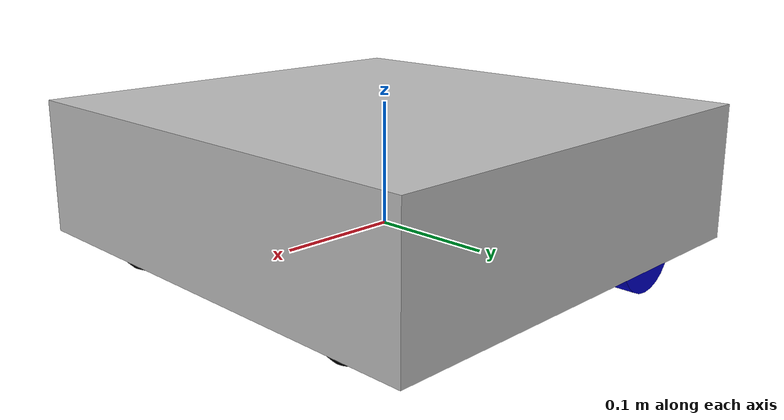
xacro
<?xml version="1.0"?>
<robot xmlns:xacro="http://www.ros.org/wiki/xacro"  name="robot">

    <xacro:include filename="inertial_macros.xacro"/>

    <!-- PARAMETERS -->

    <!-- CHASSIS PARAMETERS -->
    <xacro:property name="chassis_length" value="0.370"/>
    <xacro:property name="chassis_width" value="0.395"/>
    <xacro:property name="chassis_height" value="0.110"/>
    <xacro:property name="chassis_mass" value="1.0"/>

    <!-- OFFSET PARAMETERS -->
    <xacro:property name="wheel_offset_x" value="0.245"/>
    <xacro:property name="wheel_offset_y" value="0.170"/>
    <xacro:property name="wheel_offset_z" value="0.005"/>

    <!-- WHEELS PARAMETERS -->
    <xacro:property name="wheel_radius" value="0.033"/>
    <xacro:property name="wheel_thickness" value="0.026"/>
    <xacro:property name="wheel_mass" value="0.05"/>

    <!-- CASTER WHEEL PARAMETERS -->
    <xacro:property name="caster_wheel_radius" value="0.02"/>
    <xacro:property name="caster_wheel_mass" value="0.01"/>

    <!-- CASTER WHEEL OFFSET PARAMTERS -->
    <xacro:property name="caster_wheel_offset_x" value="0.19"/>
    <xacro:property name="caster_wheel_offset_y" value="0.12"/>
    <xacro:property name="caster_wheel_offset_z" value="${wheel_offset_z - wheel_radius + caster_wheel_radius}"/>

    <material name="silver">
        <color rgba="0.75 0.75 0.75 1"/>
    </material>

    <material name="blue">
        <color rgba="0 0 0.8 1"/>
    </material>

    <material name="black">
        <color rgba="0 0 0 1"/>
    </material>

    <material name="red">
        <color rgba="0.8 0 0 1"/>
    </material>

    <!-- BASE LINK -->
    <link name="base_link">
    </link>

    <!-- BASE FOOTPRINT JOINT -->
    <joint name="base_footprint_joint" type="fixed">
        <parent link="base_link"/>
        <child link="base_footprint"/>
        <origin xyz="0 0 0" rpy="0 0 0"/>
    </joint>

    <!-- BASE FOOTPRINT LINK -->
    <link name="base_footprint">
    </link>

    <!-- CHASSIS JOINT -->
    <joint name="chassis_joint" type="fixed">
        <parent link="base_link"/>
        <child link="chassis"/>
        <origin xyz="0 0 ${-wheel_offset_z}"/>
    </joint>

    <!-- CHASSIS LINK -->
    <link name="chassis">

        <!-- VISUAL -->
        <visual>
            <origin xyz="0 0 0.05"/>
            <geometry>
                <box size="${chassis_length} ${chassis_width} ${chassis_height}"/>
            </geometry>
            <material name="silver"/>
        </visual>

        <!-- COLLISION -->
        <collision>
            <origin xyz="0 0 ${chassis_height}"/>
            <geometry>
                <box size="${chassis_length} ${chassis_width} ${chassis_height}"/>
            </geometry>
        </collision>

        <!-- INERTIA -->
        <xacro:inertial_box mass="${chassis_mass}" x="${chassis_length}" y="${chassis_width}" z="${chassis_height}">
            <origin xyz="0 0 ${chassis_height/2}" rpy="0 0 0"/>
        </xacro:inertial_box>

    </link>

    <!-- GAZEBO CHASSIS -->
    <gazebo reference="chassis">
        <material>Gazebo/Silver</material>
    </gazebo>

    <!-- LEFT WHEEL JOINT -->

    <joint name="left_wheel_joint" type="continuous">
        <parent link="chassis"/>
        <child link="left_wheel"/>
        <origin xyz="-0.10 ${wheel_offset_y} 0" rpy="-${pi/2} 0 0" />
        <axis xyz="0 0 1"/>
    </joint>

    <!-- LEFT WHEEL LINK -->

    <link name="left_wheel">

        <!-- VISUAL -->
        <visual>
            <geometry>
                <cylinder radius="${wheel_radius}" length="${wheel_thickness}"/>
            </geometry>
            <material name="blue"/>
        </visual>

        <!-- COLLISION -->
        <collision>
            <geometry>
                <sphere radius="${wheel_radius}"/>
            </geometry>
        </collision>

        <!-- INERTIA -->
        <xacro:inertial_cylinder mass="${wheel_mass}" length="${wheel_thickness}" radius="${wheel_radius}">
            <origin xyz="0 0 0" rpy="0 0 0"/>
        </xacro:inertial_cylinder>

    </link>

    <!-- GAZEBO LEFT WHEEL -->
    <gazebo reference="left_wheel">
        <material>Gazebo/Blue</material>
    </gazebo>

    <!-- RIGHT WHEEL JOINT -->
    <joint name="right_wheel_joint" type="continuous">
        <parent link="chassis"/>
        <child link="right_wheel"/>
        <origin xyz="-0.10 ${-wheel_offset_y} 0" rpy="${pi/2} 0 0"/>
        <axis xyz="0 0 -1"/>
    </joint>

    <!-- RIGHT WHEEL LINK -->
    <link name="right_wheel">

        <!-- VISUAL -->
        <visual>
            <geometry>
                <cylinder radius="${wheel_radius}" length="${wheel_thickness}"/>
            </geometry>
            <material name="blue"/>
        </visual>

        <!-- COLLISION -->
        <collision>
            <geometry>
                <sphere radius="${wheel_radius}"/>
            </geometry>
        </collision>

        <!-- INERTIA -->
        <xacro:inertial_cylinder mass="${wheel_mass}" length="${wheel_thickness}" radius="${wheel_radius}">
            <origin xyz="0 0 0" rpy="0 0 0"/>
        </xacro:inertial_cylinder>

    </link>

    <!-- GAZEBO RIGHT WHEEL -->
    <gazebo reference="right_wheel">
        <material>Gazebo/Blue</material>
    </gazebo>

    <!-- REAR CASTER WHEEL -->

    <!-- REAR CASTER WHEEL JOINT -->

    <!-- REAR CASTER WHEEL LINK -->
        <!-- VISUAL -->

        <!-- COLLISION -->

        <!-- INERTIA -->

    <!-- GAZEBO REAR CASTER WHEEL -->

    <!-- LEFT CASTER WHEEL  -->

    <joint name="left_caster_wheel_joint" type="fixed">
        <parent link="chassis"/>
        <child link="left_caster_wheel"/>
        <origin xyz="0.15 ${caster_wheel_offset_y} ${caster_wheel_offset_z}"/>
    </joint>

    <!-- LEFT CASTER WHEEL LINK -->
    <link name="left_caster_wheel">
        <!-- VISUAL -->
        <visual>
            <geometry>
                <sphere radius="${caster_wheel_radius}"/>
            </geometry>
            <material name="black"/>
        </visual>

        <!-- COLLISION -->
        <collision>
            <geometry>
                <sphere radius="${caster_wheel_radius}"/>
            </geometry>
        </collision>

        <!-- INERTIA -->
        <xacro:inertial_sphere mass="${caster_wheel_mass}" radius="${caster_wheel_radius}">
            <origin xyz="0 0 0" rpy="0 0 0"/>
        </xacro:inertial_sphere>

    </link>

    <!-- GAZEBO LEFT CASTER WHEEL -->
    <gazebo reference="left_caster_wheel">
        <material>Gazebo/Black</material>
        <mu1 value="0.001"/>
        <mu2 value="0.001"/>
    </gazebo>

    <!-- RIGHT CASTER WHEEL 2 -->

    <joint name="right_caster_wheel_joint" type="fixed">
        <parent link="chassis"/>
        <child link="right_caster_wheel"/>
        <origin xyz="0.15 ${-caster_wheel_offset_y} ${caster_wheel_offset_z}"/>
    </joint>

    <!-- REAR CASTER WHEEL LINK -->
    <link name="right_caster_wheel">
        <!-- VISUAL -->
        <visual>
            <geometry>
                <sphere radius="${caster_wheel_radius}"/>
            </geometry>
            <material name="black"/>
        </visual>

        <!-- COLLISION -->
        <collision>
            <geometry>
                <sphere radius="${caster_wheel_radius}"/>
            </geometry>
        </collision>

        <!-- INERTIA -->
        <xacro:inertial_sphere mass="${caster_wheel_mass}" radius="${caster_wheel_radius}">
            <origin xyz="0 0 0" rpy="0 0 0"/>
        </xacro:inertial_sphere>
    </link>

    <!-- GAZEBO RIGHT CASTER WHEEL -->
    <gazebo reference="right_caster_wheel">
        <material>Gazebo/Black</material>
        <mu1 value="0.001"/>
        <mu2 value="0.001"/>
    </gazebo>

</robot>
